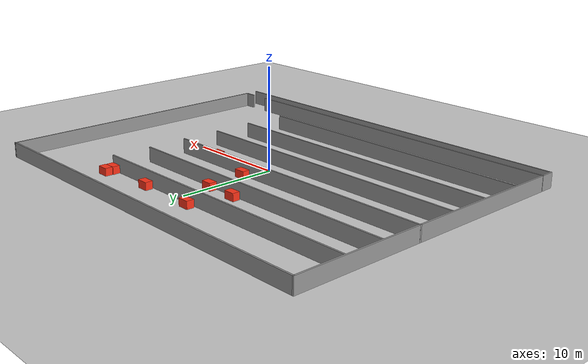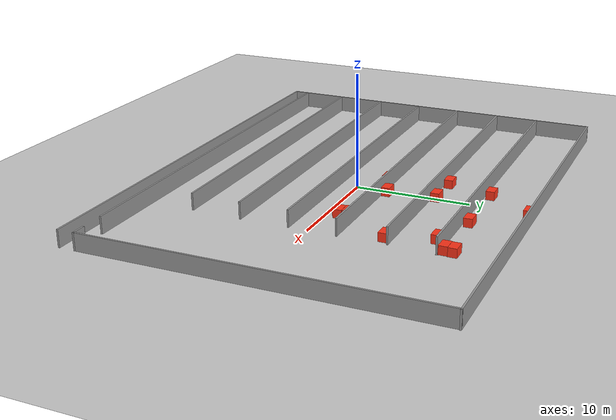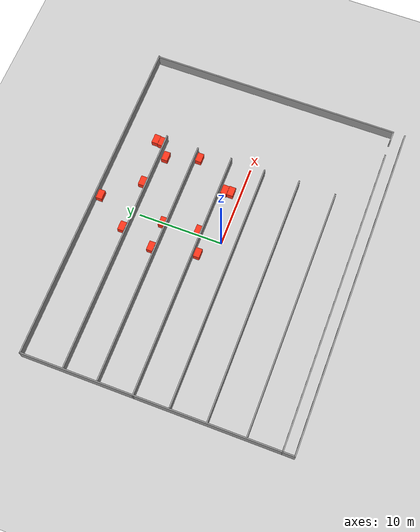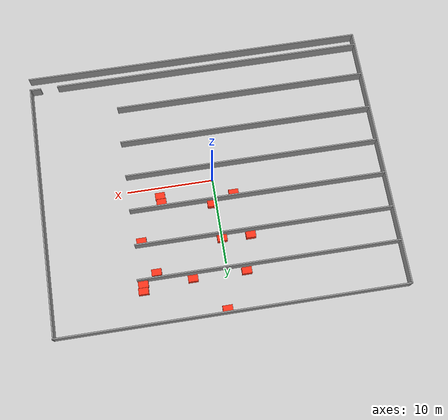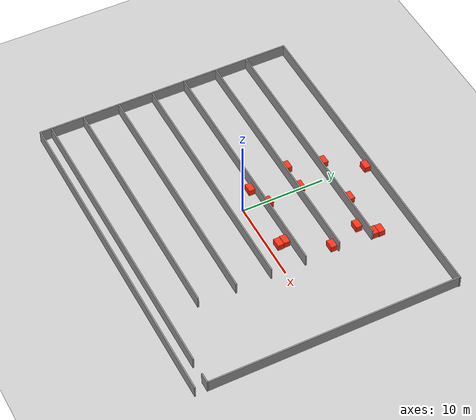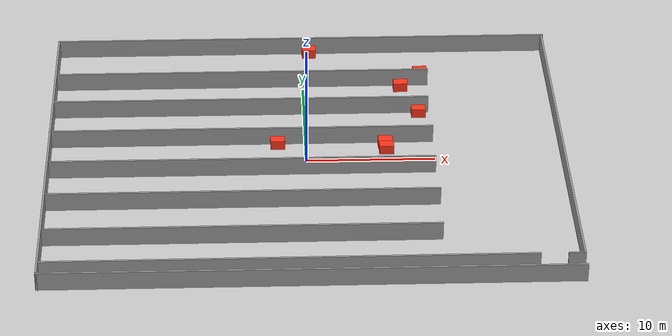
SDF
<sdf version="1.7">
 <world name="default">
  <model name="ground_plane">
   <static>1</static>
   <link name="link">
    <collision name="collision">
     <geometry><plane><normal>0 0 1</normal><size>100 100</size></plane></geometry>
     <surface>
      <contact><collide_bitmask>65535</collide_bitmask></contact>
      <friction><ode><mu>100</mu><mu2>50</mu2></ode></friction>
     </surface>
    </collision>
    <visual name="visual">
     <cast_shadows>0</cast_shadows>
     <geometry><plane><normal>0 0 1</normal><size>100 100</size></plane></geometry>
     <material>
      <script><uri>file://media/materials/scripts/gazebo.material</uri><name>Gazebo/Grey</name></script>
     </material>
    </visual>
   </link>
  </model>
  <model name="factory_depo">
   <pose>-0.011575 -0.0218 -0.015891 0 -0 0</pose>
   <link name="Wall_11">
    <pose>0.00391 -14.2501 0 0 -0 0.001782</pose>
    <visual name="Wall_11_Visual_0">
     <pose>-1.64591 0 0.75 0 -0 0</pose>
     <geometry><box><size>36.7082 0.15 1.5</size></box></geometry>
     <material>
      <script><uri>file://media/materials/scripts/gazebo.material</uri><name>Gazebo/Grey</name></script>
      <ambient>1 1 1 1</ambient>
     </material>
     <meta><layer>0</layer></meta>
    </visual>
    <collision name="Wall_11_Collision_0">
     <geometry><box><size>36.7082 0.15 1.5</size></box></geometry>
     <pose>-1.64591 0 0.75 0 -0 0</pose>
    </collision>
    <visual name="Wall_11_Visual_1">
     <pose>19.3541 0 0.75 0 -0 0</pose>
     <geometry><box><size>1.29181 0.15 1.5</size></box></geometry>
     <material>
      <script><uri>file://media/materials/scripts/gazebo.material</uri><name>Gazebo/Grey</name></script>
      <ambient>1 1 1 1</ambient>
     </material>
     <meta><layer>0</layer></meta>
    </visual>
    <collision name="Wall_11_Collision_1">
     <geometry><box><size>1.29181 0.15 1.5</size></box></geometry>
     <pose>19.3541 0 0.75 0 -0 0</pose>
    </collision>
   </link>
   <link name="Wall_13">
    <collision name="Wall_13_Collision">
     <geometry><box><size>30 0.15 1.5</size></box></geometry>
     <pose>0 0 0.75 0 -0 0</pose>
    </collision>
    <visual name="Wall_13_Visual">
     <pose>0 0 0.75 0 -0 0</pose>
     <geometry><box><size>30 0.15 1.5</size></box></geometry>
     <material>
      <script><uri>file://media/materials/scripts/gazebo.material</uri><name>Gazebo/Grey</name></script>
      <ambient>1 1 1 1</ambient>
     </material>
     <meta><layer>0</layer></meta>
    </visual>
    <pose>19.8934 0.710432 0 0 -0 1.57317</pose>
   </link>
   <link name="Wall_15">
    <collision name="Wall_15_Collision">
     <geometry><box><size>40 0.15 1.5</size></box></geometry>
     <pose>0 0 0.75 0 -0 0</pose>
    </collision>
    <visual name="Wall_15_Visual">
     <pose>0 0 0.75 0 -0 0</pose>
     <geometry><box><size>40 0.15 1.5</size></box></geometry>
     <material>
      <script><uri>file://media/materials/scripts/gazebo.material</uri><name>Gazebo/Grey</name></script>
      <ambient>1 1 1 1</ambient>
     </material>
     <meta><layer>0</layer></meta>
    </visual>
    <pose>0.00391 15.6354 0 0 -0 0</pose>
   </link>
   <link name="Wall_27">
    <collision name="Wall_27_Collision">
     <geometry><box><size>30 0.15 1.5</size></box></geometry>
     <pose>0 0 0.75 0 -0 0</pose>
    </collision>
    <visual name="Wall_27_Visual">
     <pose>0 0 0.75 0 -0 0</pose>
     <geometry><box><size>30 0.15 1.5</size></box></geometry>
     <material>
      <script><uri>file://media/materials/scripts/gazebo.material</uri><name>Gazebo/Grey</name></script>
      <ambient>1 1 1 1</ambient>
     </material>
     <meta><layer>0</layer></meta>
    </visual>
    <pose>-4.88109 10.6354 0 0 -0 0</pose>
   </link>
   <link name="Wall_31">
    <collision name="Wall_31_Collision">
     <geometry><box><size>29.75 0.15 1.5</size></box></geometry>
     <pose>0 0 0.75 0 -0 0</pose>
    </collision>
    <visual name="Wall_31_Visual">
     <pose>0 0 0.75 0 -0 0</pose>
     <geometry><box><size>29.75 0.15 1.5</size></box></geometry>
     <material>
      <script><uri>file://media/materials/scripts/gazebo.material</uri><name>Gazebo/Grey</name></script>
      <ambient>1 1 1 1</ambient>
     </material>
     <meta><layer>0</layer></meta>
    </visual>
    <pose>-4.96609 6.64743 0 0 -0 0</pose>
   </link>
   <link name="Wall_33">
    <collision name="Wall_33_Collision">
     <geometry><box><size>30 0.15 1.5</size></box></geometry>
     <pose>0 0 0.75 0 -0 0</pose>
    </collision>
    <visual name="Wall_33_Visual">
     <pose>0 0 0.75 0 -0 0</pose>
     <geometry><box><size>30 0.15 1.5</size></box></geometry>
     <material>
      <script><uri>file://media/materials/scripts/gazebo.material</uri><name>Gazebo/Grey</name></script>
      <ambient>1 1 1 1</ambient>
     </material>
     <meta><layer>0</layer></meta>
    </visual>
    <pose>-5.00409 2.49743 0 0 -0 0</pose>
   </link>
   <link name="Wall_35">
    <collision name="Wall_35_Collision">
     <geometry><box><size>29.75 0.15 1.5</size></box></geometry>
     <pose>0 0 0.75 0 -0 0</pose>
    </collision>
    <visual name="Wall_35_Visual">
     <pose>0 0 0.75 0 -0 0</pose>
     <geometry><box><size>29.75 0.15 1.5</size></box></geometry>
     <material>
      <script><uri>file://media/materials/scripts/gazebo.material</uri><name>Gazebo/Grey</name></script>
      <ambient>1 1 1 1</ambient>
     </material>
     <meta><layer>0</layer></meta>
    </visual>
    <pose>-4.92909 -1.64033 0 0 -0 0</pose>
   </link>
   <link name="Wall_38">
    <collision name="Wall_38_Collision">
     <geometry><box><size>30 0.15 1.5</size></box></geometry>
     <pose>0 0 0.75 0 -0 0</pose>
    </collision>
    <visual name="Wall_38_Visual">
     <pose>0 0 0.75 0 -0 0</pose>
     <geometry><box><size>30 0.15 1.5</size></box></geometry>
     <material>
      <script><uri>file://media/materials/scripts/gazebo.material</uri><name>Gazebo/Grey</name></script>
      <ambient>1 1 1 1</ambient>
     </material>
     <meta><layer>0</layer></meta>
    </visual>
    <pose>-4.98909 -5.87657 0 0 -0 0</pose>
   </link>
   <link name="Wall_41">
    <collision name="Wall_41_Collision">
     <geometry><box><size>29.75 0.15 1.5</size></box></geometry>
     <pose>0 0 0.75 0 -0 0</pose>
    </collision>
    <visual name="Wall_41_Visual">
     <pose>0 0 0.75 0 -0 0</pose>
     <geometry><box><size>29.75 0.15 1.5</size></box></geometry>
     <material>
      <script><uri>file://media/materials/scripts/gazebo.material</uri><name>Gazebo/Grey</name></script>
      <ambient>1 1 1 1</ambient>
     </material>
     <meta><layer>0</layer></meta>
    </visual>
    <pose>-4.99109 -10.3066 0 0 -0 0</pose>
   </link>
   <link name="Wall_43">
    <collision name="Wall_43_Collision">
     <geometry><box><size>1.5 0.15 1.5</size></box></geometry>
     <pose>0 0 0.75 0 -0 0</pose>
    </collision>
    <visual name="Wall_43_Visual">
     <pose>0 0 0.75 0 -0 0</pose>
     <geometry><box><size>1.5 0.15 1.5</size></box></geometry>
     <material>
      <script><uri>file://media/materials/scripts/gazebo.material</uri><name>Gazebo/Grey</name></script>
      <ambient>1 1 1 1</ambient>
     </material>
     <meta><layer>0</layer></meta>
    </visual>
    <pose>-19.9211 -14.9606 0 0 -0 -1.5708</pose>
   </link>
   <link name="Wall_45">
    <collision name="Wall_45_Collision">
     <geometry><box><size>40 0.15 1.5</size></box></geometry>
     <pose>0 0 0.75 0 -0 0</pose>
    </collision>
    <visual name="Wall_45_Visual">
     <pose>0 0 0.75 0 -0 0</pose>
     <geometry><box><size>40 0.15 1.5</size></box></geometry>
     <material>
      <script><uri>file://media/materials/scripts/gazebo.material</uri><name>Gazebo/Grey</name></script>
      <ambient>1 1 1 1</ambient>
     </material>
     <meta><layer>0</layer></meta>
    </visual>
    <pose>0.00391 -15.6356 0 0 -0 0</pose>
   </link>
   <link name="Wall_9">
    <collision name="Wall_9_Collision">
     <geometry><box><size>30.071 0.15 1.5</size></box></geometry>
     <pose>0 0 0.75 0 -0 0</pose>
    </collision>
    <visual name="Wall_9_Visual">
     <pose>0 0 0.75 0 -0 0</pose>
     <geometry><box><size>30.071 0.15 1.5</size></box></geometry>
     <material>
      <script><uri>file://media/materials/scripts/gazebo.material</uri><name>Gazebo/Grey</name></script>
      <ambient>1 1 1 1</ambient>
     </material>
     <meta><layer>0</layer></meta>
    </visual>
    <pose>-19.9211 0.674932 0 0 -0 1.5708</pose>
   </link>
   <static>1</static>
  </model>
  <model name="payload_box_clone_5_clone_10">
   <link name="link">
    <inertial>
     <mass>15</mass>
     <inertia><ixx>2.32332</ixx><ixy>0</ixy><ixz>0</ixz><iyy>1.43272</iyy><iyz>0</iyz><izz>2.2858</izz></inertia>
    </inertial>
    <visual name="visual">
     <geometry><box><size>0.747047 1.12719 0.766877</size></box></geometry>
     <material>
      <script><name>Gazebo/Grey</name><uri>file://media/materials/scripts/gazebo.material</uri></script>
      <shader type="pixel"><normal_map>__default__</normal_map></shader>
      <ambient>1 0.2 0.1 0</ambient>
      <diffuse>0.7 0.7 0.7 1</diffuse>
      <specular>0.01 0.01 0.01 1</specular>
      <emissive>0 0 0 1</emissive>
     </material>
    </visual>
    <collision name="collision">
     <geometry><box><size>0.747047 1.12719 0.766877</size></box></geometry>
     <surface>
      <friction>
       <ode><mu>1</mu><mu2>1</mu2><fdir1>0 0 0</fdir1><slip1>0</slip1><slip2>0</slip2></ode>
       <torsional>
        <coefficient>1</coefficient>
        <patch_radius>0</patch_radius>
        <surface_radius>0</surface_radius>
        <use_patch_radius>1</use_patch_radius>
        <ode><slip>0</slip></ode>
       </torsional>
      </friction>
      <bounce><restitution_coefficient>0</restitution_coefficient><threshold>1e+06</threshold></bounce>
      <contact>
       <collide_without_contact>0</collide_without_contact>
       <collide_without_contact_bitmask>1</collide_without_contact_bitmask>
       <collide_bitmask>1</collide_bitmask>
       <ode>
        <soft_cfm>0</soft_cfm>
        <soft_erp>0.2</soft_erp>
        <kp>1e+13</kp>
        <kd>1</kd>
        <max_vel>0.01</max_vel>
        <min_depth>0</min_depth>
       </ode>
       <bullet>
        <split_impulse>1</split_impulse>
        <split_impulse_penetration_threshold>-0.01</split_impulse_penetration_threshold>
        <soft_cfm>0</soft_cfm>
        <soft_erp>0.2</soft_erp>
        <kp>1e+13</kp>
        <kd>1</kd>
       </bullet>
      </contact>
     </surface>
    </collision>
   </link>
   <static>0</static>
   <pose>6.22353 1.88647 0.383438 0 -0 1.5709</pose>
  </model>
  <model name="payload_box_clone_5_clone_11">
   <link name="link">
    <inertial>
     <mass>15</mass>
     <inertia><ixx>2.32332</ixx><ixy>0</ixy><ixz>0</ixz><iyy>1.43272</iyy><iyz>0</iyz><izz>2.2858</izz></inertia>
    </inertial>
    <visual name="visual">
     <geometry><box><size>0.747047 1.12719 0.766877</size></box></geometry>
     <material>
      <script><name>Gazebo/Grey</name><uri>file://media/materials/scripts/gazebo.material</uri></script>
      <shader type="pixel"><normal_map>__default__</normal_map></shader>
      <ambient>1 0.2 0.1 0</ambient>
      <diffuse>0.7 0.7 0.7 1</diffuse>
      <specular>0.01 0.01 0.01 1</specular>
      <emissive>0 0 0 1</emissive>
     </material>
    </visual>
    <collision name="collision">
     <geometry><box><size>0.747047 1.12719 0.766877</size></box></geometry>
     <surface>
      <friction>
       <ode><mu>1</mu><mu2>1</mu2><fdir1>0 0 0</fdir1><slip1>0</slip1><slip2>0</slip2></ode>
       <torsional>
        <coefficient>1</coefficient>
        <patch_radius>0</patch_radius>
        <surface_radius>0</surface_radius>
        <use_patch_radius>1</use_patch_radius>
        <ode><slip>0</slip></ode>
       </torsional>
      </friction>
      <bounce><restitution_coefficient>0</restitution_coefficient><threshold>1e+06</threshold></bounce>
      <contact>
       <collide_without_contact>0</collide_without_contact>
       <collide_without_contact_bitmask>1</collide_without_contact_bitmask>
       <collide_bitmask>1</collide_bitmask>
       <ode>
        <soft_cfm>0</soft_cfm>
        <soft_erp>0.2</soft_erp>
        <kp>1e+13</kp>
        <kd>1</kd>
        <max_vel>0.01</max_vel>
        <min_depth>0</min_depth>
       </ode>
       <bullet>
        <split_impulse>1</split_impulse>
        <split_impulse_penetration_threshold>-0.01</split_impulse_penetration_threshold>
        <soft_cfm>0</soft_cfm>
        <soft_erp>0.2</soft_erp>
        <kp>1e+13</kp>
        <kd>1</kd>
       </bullet>
      </contact>
     </surface>
    </collision>
   </link>
   <static>0</static>
   <pose>6.28685 1.12341 0.383438 0 -0 1.5709</pose>
  </model>
  <model name="payload_box_clone_5_clone_13">
   <link name="link">
    <inertial>
     <mass>15</mass>
     <inertia><ixx>2.32332</ixx><ixy>0</ixy><ixz>0</ixz><iyy>1.43272</iyy><iyz>0</iyz><izz>2.2858</izz></inertia>
    </inertial>
    <visual name="visual">
     <geometry><box><size>0.747047 1.12719 0.766877</size></box></geometry>
     <material>
      <script><name>Gazebo/Grey</name><uri>file://media/materials/scripts/gazebo.material</uri></script>
      <shader type="pixel"><normal_map>__default__</normal_map></shader>
      <ambient>1 0.2 0.1 0</ambient>
      <diffuse>0.7 0.7 0.7 1</diffuse>
      <specular>0.01 0.01 0.01 1</specular>
      <emissive>0 0 0 1</emissive>
     </material>
    </visual>
    <collision name="collision">
     <geometry><box><size>0.747047 1.12719 0.766877</size></box></geometry>
     <surface>
      <friction>
       <ode><mu>1</mu><mu2>1</mu2><fdir1>0 0 0</fdir1><slip1>0</slip1><slip2>0</slip2></ode>
       <torsional>
        <coefficient>1</coefficient>
        <patch_radius>0</patch_radius>
        <surface_radius>0</surface_radius>
        <use_patch_radius>1</use_patch_radius>
        <ode><slip>0</slip></ode>
       </torsional>
      </friction>
      <bounce><restitution_coefficient>0</restitution_coefficient><threshold>1e+06</threshold></bounce>
      <contact>
       <collide_without_contact>0</collide_without_contact>
       <collide_without_contact_bitmask>1</collide_without_contact_bitmask>
       <collide_bitmask>1</collide_bitmask>
       <ode>
        <soft_cfm>0</soft_cfm>
        <soft_erp>0.2</soft_erp>
        <kp>1e+13</kp>
        <kd>1</kd>
        <max_vel>0.01</max_vel>
        <min_depth>0</min_depth>
       </ode>
       <bullet>
        <split_impulse>1</split_impulse>
        <split_impulse_penetration_threshold>-0.01</split_impulse_penetration_threshold>
        <soft_cfm>0</soft_cfm>
        <soft_erp>0.2</soft_erp>
        <kp>1e+13</kp>
        <kd>1</kd>
       </bullet>
      </contact>
     </surface>
    </collision>
   </link>
   <static>0</static>
   <pose>-2.19685 2.00197 0.383438 0 -0 1.5709</pose>
  </model>
  <model name="payload_box_clone_5_clone_16">
   <link name="link">
    <inertial>
     <mass>15</mass>
     <inertia><ixx>2.32332</ixx><ixy>0</ixy><ixz>0</ixz><iyy>1.43272</iyy><iyz>0</iyz><izz>2.2858</izz></inertia>
    </inertial>
    <visual name="visual">
     <geometry><box><size>0.747047 1.12719 0.766877</size></box></geometry>
     <material>
      <script><name>Gazebo/Grey</name><uri>file://media/materials/scripts/gazebo.material</uri></script>
      <shader type="pixel"><normal_map>__default__</normal_map></shader>
      <ambient>1 0.2 0.1 0</ambient>
      <diffuse>0.7 0.7 0.7 1</diffuse>
      <specular>0.01 0.01 0.01 1</specular>
      <emissive>0 0 0 1</emissive>
     </material>
    </visual>
    <collision name="collision">
     <geometry><box><size>0.747047 1.12719 0.766877</size></box></geometry>
     <surface>
      <friction>
       <ode><mu>1</mu><mu2>1</mu2><fdir1>0 0 0</fdir1><slip1>0</slip1><slip2>0</slip2></ode>
       <torsional>
        <coefficient>1</coefficient>
        <patch_radius>0</patch_radius>
        <surface_radius>0</surface_radius>
        <use_patch_radius>1</use_patch_radius>
        <ode><slip>0</slip></ode>
       </torsional>
      </friction>
      <bounce><restitution_coefficient>0</restitution_coefficient><threshold>1e+06</threshold></bounce>
      <contact>
       <collide_without_contact>0</collide_without_contact>
       <collide_without_contact_bitmask>1</collide_without_contact_bitmask>
       <collide_bitmask>1</collide_bitmask>
       <ode>
        <soft_cfm>0</soft_cfm>
        <soft_erp>0.2</soft_erp>
        <kp>1e+13</kp>
        <kd>1</kd>
        <max_vel>0.01</max_vel>
        <min_depth>0</min_depth>
       </ode>
       <bullet>
        <split_impulse>1</split_impulse>
        <split_impulse_penetration_threshold>-0.01</split_impulse_penetration_threshold>
        <soft_cfm>0</soft_cfm>
        <soft_erp>0.2</soft_erp>
        <kp>1e+13</kp>
        <kd>1</kd>
       </bullet>
      </contact>
     </surface>
    </collision>
   </link>
   <static>0</static>
   <pose>0.442507 2.94292 0.383438 0 -0 1.5709</pose>
  </model>
  <model name="payload_box_clone_5_clone_18">
   <link name="link">
    <inertial>
     <mass>15</mass>
     <inertia><ixx>2.32332</ixx><ixy>0</ixy><ixz>0</ixz><iyy>1.43272</iyy><iyz>0</iyz><izz>2.2858</izz></inertia>
    </inertial>
    <visual name="visual">
     <geometry><box><size>0.747047 1.12719 0.766877</size></box></geometry>
     <material>
      <script><name>Gazebo/Grey</name><uri>file://media/materials/scripts/gazebo.material</uri></script>
      <shader type="pixel"><normal_map>__default__</normal_map></shader>
      <ambient>1 0.2 0.1 0</ambient>
      <diffuse>0.7 0.7 0.7 1</diffuse>
      <specular>0.01 0.01 0.01 1</specular>
      <emissive>0 0 0 1</emissive>
     </material>
    </visual>
    <collision name="collision">
     <geometry><box><size>0.747047 1.12719 0.766877</size></box></geometry>
     <surface>
      <friction>
       <ode><mu>1</mu><mu2>1</mu2><fdir1>0 0 0</fdir1><slip1>0</slip1><slip2>0</slip2></ode>
       <torsional>
        <coefficient>1</coefficient>
        <patch_radius>0</patch_radius>
        <surface_radius>0</surface_radius>
        <use_patch_radius>1</use_patch_radius>
        <ode><slip>0</slip></ode>
       </torsional>
      </friction>
      <bounce><restitution_coefficient>0</restitution_coefficient><threshold>1e+06</threshold></bounce>
      <contact>
       <collide_without_contact>0</collide_without_contact>
       <collide_without_contact_bitmask>1</collide_without_contact_bitmask>
       <collide_bitmask>1</collide_bitmask>
       <ode>
        <soft_cfm>0</soft_cfm>
        <soft_erp>0.2</soft_erp>
        <kp>1e+13</kp>
        <kd>1</kd>
        <max_vel>0.01</max_vel>
        <min_depth>0</min_depth>
       </ode>
       <bullet>
        <split_impulse>1</split_impulse>
        <split_impulse_penetration_threshold>-0.01</split_impulse_penetration_threshold>
        <soft_cfm>0</soft_cfm>
        <soft_erp>0.2</soft_erp>
        <kp>1e+13</kp>
        <kd>1</kd>
       </bullet>
      </contact>
     </surface>
    </collision>
   </link>
   <static>0</static>
   <pose>9.0877 6.14162 0.383438 0 -0 1.5709</pose>
  </model>
  <model name="payload_box_clone_5_clone_19">
   <link name="link">
    <inertial>
     <mass>15</mass>
     <inertia><ixx>2.32332</ixx><ixy>0</ixy><ixz>0</ixz><iyy>1.43272</iyy><iyz>0</iyz><izz>2.2858</izz></inertia>
    </inertial>
    <visual name="visual">
     <geometry><box><size>0.747047 1.12719 0.766877</size></box></geometry>
     <material>
      <script><name>Gazebo/Grey</name><uri>file://media/materials/scripts/gazebo.material</uri></script>
      <shader type="pixel"><normal_map>__default__</normal_map></shader>
      <ambient>1 0.2 0.1 0</ambient>
      <diffuse>0.7 0.7 0.7 1</diffuse>
      <specular>0.01 0.01 0.01 1</specular>
      <emissive>0 0 0 1</emissive>
     </material>
    </visual>
    <collision name="collision">
     <geometry><box><size>0.747047 1.12719 0.766877</size></box></geometry>
     <surface>
      <friction>
       <ode><mu>1</mu><mu2>1</mu2><fdir1>0 0 0</fdir1><slip1>0</slip1><slip2>0</slip2></ode>
       <torsional>
        <coefficient>1</coefficient>
        <patch_radius>0</patch_radius>
        <surface_radius>0</surface_radius>
        <use_patch_radius>1</use_patch_radius>
        <ode><slip>0</slip></ode>
       </torsional>
      </friction>
      <bounce><restitution_coefficient>0</restitution_coefficient><threshold>1e+06</threshold></bounce>
      <contact>
       <collide_without_contact>0</collide_without_contact>
       <collide_without_contact_bitmask>1</collide_without_contact_bitmask>
       <collide_bitmask>1</collide_bitmask>
       <ode>
        <soft_cfm>0</soft_cfm>
        <soft_erp>0.2</soft_erp>
        <kp>1e+13</kp>
        <kd>1</kd>
        <max_vel>0.01</max_vel>
        <min_depth>0</min_depth>
       </ode>
       <bullet>
        <split_impulse>1</split_impulse>
        <split_impulse_penetration_threshold>-0.01</split_impulse_penetration_threshold>
        <soft_cfm>0</soft_cfm>
        <soft_erp>0.2</soft_erp>
        <kp>1e+13</kp>
        <kd>1</kd>
       </bullet>
      </contact>
     </surface>
    </collision>
   </link>
   <static>0</static>
   <pose>-0.03112 7.15043 0.383438 0 -0 1.5709</pose>
  </model>
  <model name="payload_box_clone_5_clone_20">
   <link name="link">
    <inertial>
     <mass>15</mass>
     <inertia><ixx>2.32332</ixx><ixy>0</ixy><ixz>0</ixz><iyy>1.43272</iyy><iyz>0</iyz><izz>2.2858</izz></inertia>
    </inertial>
    <visual name="visual">
     <geometry><box><size>0.747047 1.12719 0.766877</size></box></geometry>
     <material>
      <script><name>Gazebo/Grey</name><uri>file://media/materials/scripts/gazebo.material</uri></script>
      <shader type="pixel"><normal_map>__default__</normal_map></shader>
      <ambient>1 0.2 0.1 0</ambient>
      <diffuse>0.7 0.7 0.7 1</diffuse>
      <specular>0.01 0.01 0.01 1</specular>
      <emissive>0 0 0 1</emissive>
     </material>
    </visual>
    <collision name="collision">
     <geometry><box><size>0.747047 1.12719 0.766877</size></box></geometry>
     <surface>
      <friction>
       <ode><mu>1</mu><mu2>1</mu2><fdir1>0 0 0</fdir1><slip1>0</slip1><slip2>0</slip2></ode>
       <torsional>
        <coefficient>1</coefficient>
        <patch_radius>0</patch_radius>
        <surface_radius>0</surface_radius>
        <use_patch_radius>1</use_patch_radius>
        <ode><slip>0</slip></ode>
       </torsional>
      </friction>
      <bounce><restitution_coefficient>0</restitution_coefficient><threshold>1e+06</threshold></bounce>
      <contact>
       <collide_without_contact>0</collide_without_contact>
       <collide_without_contact_bitmask>1</collide_without_contact_bitmask>
       <collide_bitmask>1</collide_bitmask>
       <ode>
        <soft_cfm>0</soft_cfm>
        <soft_erp>0.2</soft_erp>
        <kp>1e+13</kp>
        <kd>1</kd>
        <max_vel>0.01</max_vel>
        <min_depth>0</min_depth>
       </ode>
       <bullet>
        <split_impulse>1</split_impulse>
        <split_impulse_penetration_threshold>-0.01</split_impulse_penetration_threshold>
        <soft_cfm>0</soft_cfm>
        <soft_erp>0.2</soft_erp>
        <kp>1e+13</kp>
        <kd>1</kd>
       </bullet>
      </contact>
     </surface>
    </collision>
   </link>
   <static>0</static>
   <pose>-3.31997 7.24294 0.383438 0 -0 1.5709</pose>
  </model>
  <model name="payload_box_clone_5_clone_22">
   <link name="link">
    <inertial>
     <mass>15</mass>
     <inertia><ixx>2.32332</ixx><ixy>0</ixy><ixz>0</ixz><iyy>1.43272</iyy><iyz>0</iyz><izz>2.2858</izz></inertia>
    </inertial>
    <visual name="visual">
     <geometry><box><size>0.747047 1.12719 0.766877</size></box></geometry>
     <material>
      <script><name>Gazebo/Grey</name><uri>file://media/materials/scripts/gazebo.material</uri></script>
      <shader type="pixel"><normal_map>__default__</normal_map></shader>
      <ambient>1 0.2 0.1 0</ambient>
      <diffuse>0.7 0.7 0.7 1</diffuse>
      <specular>0.01 0.01 0.01 1</specular>
      <emissive>0 0 0 1</emissive>
     </material>
    </visual>
    <collision name="collision">
     <geometry><box><size>0.747047 1.12719 0.766877</size></box></geometry>
     <surface>
      <friction>
       <ode><mu>1</mu><mu2>1</mu2><fdir1>0 0 0</fdir1><slip1>0</slip1><slip2>0</slip2></ode>
       <torsional>
        <coefficient>1</coefficient>
        <patch_radius>0</patch_radius>
        <surface_radius>0</surface_radius>
        <use_patch_radius>1</use_patch_radius>
        <ode><slip>0</slip></ode>
       </torsional>
      </friction>
      <bounce><restitution_coefficient>0</restitution_coefficient><threshold>1e+06</threshold></bounce>
      <contact>
       <collide_without_contact>0</collide_without_contact>
       <collide_without_contact_bitmask>1</collide_without_contact_bitmask>
       <collide_bitmask>1</collide_bitmask>
       <ode>
        <soft_cfm>0</soft_cfm>
        <soft_erp>0.2</soft_erp>
        <kp>1e+13</kp>
        <kd>1</kd>
        <max_vel>0.01</max_vel>
        <min_depth>0</min_depth>
       </ode>
       <bullet>
        <split_impulse>1</split_impulse>
        <split_impulse_penetration_threshold>-0.01</split_impulse_penetration_threshold>
        <soft_cfm>0</soft_cfm>
        <soft_erp>0.2</soft_erp>
        <kp>1e+13</kp>
        <kd>1</kd>
       </bullet>
      </contact>
     </surface>
    </collision>
   </link>
   <static>0</static>
   <pose>7.86278 9.9374 0.383438 0 -0 1.5709</pose>
  </model>
  <model name="payload_box_clone_5_clone_23">
   <link name="link">
    <inertial>
     <mass>15</mass>
     <inertia><ixx>2.32332</ixx><ixy>0</ixy><ixz>0</ixz><iyy>1.43272</iyy><iyz>0</iyz><izz>2.2858</izz></inertia>
    </inertial>
    <visual name="visual">
     <geometry><box><size>0.747047 1.12719 0.766877</size></box></geometry>
     <material>
      <script><name>Gazebo/Grey</name><uri>file://media/materials/scripts/gazebo.material</uri></script>
      <shader type="pixel"><normal_map>__default__</normal_map></shader>
      <ambient>1 0.2 0.1 0</ambient>
      <diffuse>0.7 0.7 0.7 1</diffuse>
      <specular>0.01 0.01 0.01 1</specular>
      <emissive>0 0 0 1</emissive>
     </material>
    </visual>
    <collision name="collision">
     <geometry><box><size>0.747047 1.12719 0.766877</size></box></geometry>
     <surface>
      <friction>
       <ode><mu>1</mu><mu2>1</mu2><fdir1>0 0 0</fdir1><slip1>0</slip1><slip2>0</slip2></ode>
       <torsional>
        <coefficient>1</coefficient>
        <patch_radius>0</patch_radius>
        <surface_radius>0</surface_radius>
        <use_patch_radius>1</use_patch_radius>
        <ode><slip>0</slip></ode>
       </torsional>
      </friction>
      <bounce><restitution_coefficient>0</restitution_coefficient><threshold>1e+06</threshold></bounce>
      <contact>
       <collide_without_contact>0</collide_without_contact>
       <collide_without_contact_bitmask>1</collide_without_contact_bitmask>
       <collide_bitmask>1</collide_bitmask>
       <ode>
        <soft_cfm>0</soft_cfm>
        <soft_erp>0.2</soft_erp>
        <kp>1e+13</kp>
        <kd>1</kd>
        <max_vel>0.01</max_vel>
        <min_depth>0</min_depth>
       </ode>
       <bullet>
        <split_impulse>1</split_impulse>
        <split_impulse_penetration_threshold>-0.01</split_impulse_penetration_threshold>
        <soft_cfm>0</soft_cfm>
        <soft_erp>0.2</soft_erp>
        <kp>1e+13</kp>
        <kd>1</kd>
       </bullet>
      </contact>
     </surface>
    </collision>
   </link>
   <static>0</static>
   <pose>9.50171 11.0764 0.383438 0 -0 1.5709</pose>
  </model>
  <model name="payload_box_clone_5_clone_24">
   <link name="link">
    <inertial>
     <mass>15</mass>
     <inertia><ixx>2.32332</ixx><ixy>0</ixy><ixz>0</ixz><iyy>1.43272</iyy><iyz>0</iyz><izz>2.2858</izz></inertia>
    </inertial>
    <visual name="visual">
     <geometry><box><size>0.747047 1.12719 0.766877</size></box></geometry>
     <material>
      <script><name>Gazebo/Grey</name><uri>file://media/materials/scripts/gazebo.material</uri></script>
      <shader type="pixel"><normal_map>__default__</normal_map></shader>
      <ambient>1 0.2 0.1 0</ambient>
      <diffuse>0.7 0.7 0.7 1</diffuse>
      <specular>0.01 0.01 0.01 1</specular>
      <emissive>0 0 0 1</emissive>
     </material>
    </visual>
    <collision name="collision">
     <geometry><box><size>0.747047 1.12719 0.766877</size></box></geometry>
     <surface>
      <friction>
       <ode><mu>1</mu><mu2>1</mu2><fdir1>0 0 0</fdir1><slip1>0</slip1><slip2>0</slip2></ode>
       <torsional>
        <coefficient>1</coefficient>
        <patch_radius>0</patch_radius>
        <surface_radius>0</surface_radius>
        <use_patch_radius>1</use_patch_radius>
        <ode><slip>0</slip></ode>
       </torsional>
      </friction>
      <bounce><restitution_coefficient>0</restitution_coefficient><threshold>1e+06</threshold></bounce>
      <contact>
       <collide_without_contact>0</collide_without_contact>
       <collide_without_contact_bitmask>1</collide_without_contact_bitmask>
       <collide_bitmask>1</collide_bitmask>
       <ode>
        <soft_cfm>0</soft_cfm>
        <soft_erp>0.2</soft_erp>
        <kp>1e+13</kp>
        <kd>1</kd>
        <max_vel>0.01</max_vel>
        <min_depth>0</min_depth>
       </ode>
       <bullet>
        <split_impulse>1</split_impulse>
        <split_impulse_penetration_threshold>-0.01</split_impulse_penetration_threshold>
        <soft_cfm>0</soft_cfm>
        <soft_erp>0.2</soft_erp>
        <kp>1e+13</kp>
        <kd>1</kd>
       </bullet>
      </contact>
     </surface>
    </collision>
   </link>
   <static>0</static>
   <pose>9.56595 11.8328 0.383438 0 -0 1.5709</pose>
  </model>
  <model name="payload_box_clone_5_clone_25">
   <link name="link">
    <inertial>
     <mass>15</mass>
     <inertia><ixx>2.32332</ixx><ixy>0</ixy><ixz>0</ixz><iyy>1.43272</iyy><iyz>0</iyz><izz>2.2858</izz></inertia>
    </inertial>
    <visual name="visual">
     <geometry><box><size>0.747047 1.12719 0.766877</size></box></geometry>
     <material>
      <script><name>Gazebo/Grey</name><uri>file://media/materials/scripts/gazebo.material</uri></script>
      <shader type="pixel"><normal_map>__default__</normal_map></shader>
      <ambient>1 0.2 0.1 0</ambient>
      <diffuse>0.7 0.7 0.7 1</diffuse>
      <specular>0.01 0.01 0.01 1</specular>
      <emissive>0 0 0 1</emissive>
     </material>
    </visual>
    <collision name="collision">
     <geometry><box><size>0.747047 1.12719 0.766877</size></box></geometry>
     <surface>
      <friction>
       <ode><mu>1</mu><mu2>1</mu2><fdir1>0 0 0</fdir1><slip1>0</slip1><slip2>0</slip2></ode>
       <torsional>
        <coefficient>1</coefficient>
        <patch_radius>0</patch_radius>
        <surface_radius>0</surface_radius>
        <use_patch_radius>1</use_patch_radius>
        <ode><slip>0</slip></ode>
       </torsional>
      </friction>
      <bounce><restitution_coefficient>0</restitution_coefficient><threshold>1e+06</threshold></bounce>
      <contact>
       <collide_without_contact>0</collide_without_contact>
       <collide_without_contact_bitmask>1</collide_without_contact_bitmask>
       <collide_bitmask>1</collide_bitmask>
       <ode>
        <soft_cfm>0</soft_cfm>
        <soft_erp>0.2</soft_erp>
        <kp>1e+13</kp>
        <kd>1</kd>
        <max_vel>0.01</max_vel>
        <min_depth>0</min_depth>
       </ode>
       <bullet>
        <split_impulse>1</split_impulse>
        <split_impulse_penetration_threshold>-0.01</split_impulse_penetration_threshold>
        <soft_cfm>0</soft_cfm>
        <soft_erp>0.2</soft_erp>
        <kp>1e+13</kp>
        <kd>1</kd>
       </bullet>
      </contact>
     </surface>
    </collision>
   </link>
   <static>0</static>
   <pose>3.9177 11.243 0.383438 0 -0 1.5709</pose>
  </model>
  <model name="payload_box_clone_5_clone_26">
   <link name="link">
    <inertial>
     <mass>15</mass>
     <inertia><ixx>2.32332</ixx><ixy>0</ixy><ixz>0</ixz><iyy>1.43272</iyy><iyz>0</iyz><izz>2.2858</izz></inertia>
    </inertial>
    <visual name="visual">
     <geometry><box><size>0.747047 1.12719 0.766877</size></box></geometry>
     <material>
      <script><name>Gazebo/Grey</name><uri>file://media/materials/scripts/gazebo.material</uri></script>
      <shader type="pixel"><normal_map>__default__</normal_map></shader>
      <ambient>1 0.2 0.1 0</ambient>
      <diffuse>0.7 0.7 0.7 1</diffuse>
      <specular>0.01 0.01 0.01 1</specular>
      <emissive>0 0 0 1</emissive>
     </material>
    </visual>
    <collision name="collision">
     <geometry><box><size>0.747047 1.12719 0.766877</size></box></geometry>
     <surface>
      <friction>
       <ode><mu>1</mu><mu2>1</mu2><fdir1>0 0 0</fdir1><slip1>0</slip1><slip2>0</slip2></ode>
       <torsional>
        <coefficient>1</coefficient>
        <patch_radius>0</patch_radius>
        <surface_radius>0</surface_radius>
        <use_patch_radius>1</use_patch_radius>
        <ode><slip>0</slip></ode>
       </torsional>
      </friction>
      <bounce><restitution_coefficient>0</restitution_coefficient><threshold>1e+06</threshold></bounce>
      <contact>
       <collide_without_contact>0</collide_without_contact>
       <collide_without_contact_bitmask>1</collide_without_contact_bitmask>
       <collide_bitmask>1</collide_bitmask>
       <ode>
        <soft_cfm>0</soft_cfm>
        <soft_erp>0.2</soft_erp>
        <kp>1e+13</kp>
        <kd>1</kd>
        <max_vel>0.01</max_vel>
        <min_depth>0</min_depth>
       </ode>
       <bullet>
        <split_impulse>1</split_impulse>
        <split_impulse_penetration_threshold>-0.01</split_impulse_penetration_threshold>
        <soft_cfm>0</soft_cfm>
        <soft_erp>0.2</soft_erp>
        <kp>1e+13</kp>
        <kd>1</kd>
       </bullet>
      </contact>
     </surface>
    </collision>
   </link>
   <static>0</static>
   <pose>-2.17649 11.263 0.383438 0 -0 1.5709</pose>
  </model>
  <model name="payload_box_clone_5_clone_27">
   <link name="link">
    <inertial>
     <mass>15</mass>
     <inertia><ixx>2.32332</ixx><ixy>0</ixy><ixz>0</ixz><iyy>1.43272</iyy><iyz>0</iyz><izz>2.2858</izz></inertia>
    </inertial>
    <visual name="visual">
     <geometry><box><size>0.747047 1.12719 0.766877</size></box></geometry>
     <material>
      <script><name>Gazebo/Grey</name><uri>file://media/materials/scripts/gazebo.material</uri></script>
      <shader type="pixel"><normal_map>__default__</normal_map></shader>
      <ambient>1 0.2 0.1 0</ambient>
      <diffuse>0.7 0.7 0.7 1</diffuse>
      <specular>0.01 0.01 0.01 1</specular>
      <emissive>0 0 0 1</emissive>
     </material>
    </visual>
    <collision name="collision">
     <geometry><box><size>0.747047 1.12719 0.766877</size></box></geometry>
     <surface>
      <friction>
       <ode><mu>1</mu><mu2>1</mu2><fdir1>0 0 0</fdir1><slip1>0</slip1><slip2>0</slip2></ode>
       <torsional>
        <coefficient>1</coefficient>
        <patch_radius>0</patch_radius>
        <surface_radius>0</surface_radius>
        <use_patch_radius>1</use_patch_radius>
        <ode><slip>0</slip></ode>
       </torsional>
      </friction>
      <bounce><restitution_coefficient>0</restitution_coefficient><threshold>1e+06</threshold></bounce>
      <contact>
       <collide_without_contact>0</collide_without_contact>
       <collide_without_contact_bitmask>1</collide_without_contact_bitmask>
       <collide_bitmask>1</collide_bitmask>
       <ode>
        <soft_cfm>0</soft_cfm>
        <soft_erp>0.2</soft_erp>
        <kp>1e+13</kp>
        <kd>1</kd>
        <max_vel>0.01</max_vel>
        <min_depth>0</min_depth>
       </ode>
       <bullet>
        <split_impulse>1</split_impulse>
        <split_impulse_penetration_threshold>-0.01</split_impulse_penetration_threshold>
        <soft_cfm>0</soft_cfm>
        <soft_erp>0.2</soft_erp>
        <kp>1e+13</kp>
        <kd>1</kd>
       </bullet>
      </contact>
     </surface>
    </collision>
   </link>
   <static>0</static>
   <pose>0.612777 15.165 0.383436 -5e-06 -2e-06 1.57093</pose>
  </model>
 </world>
</sdf>
